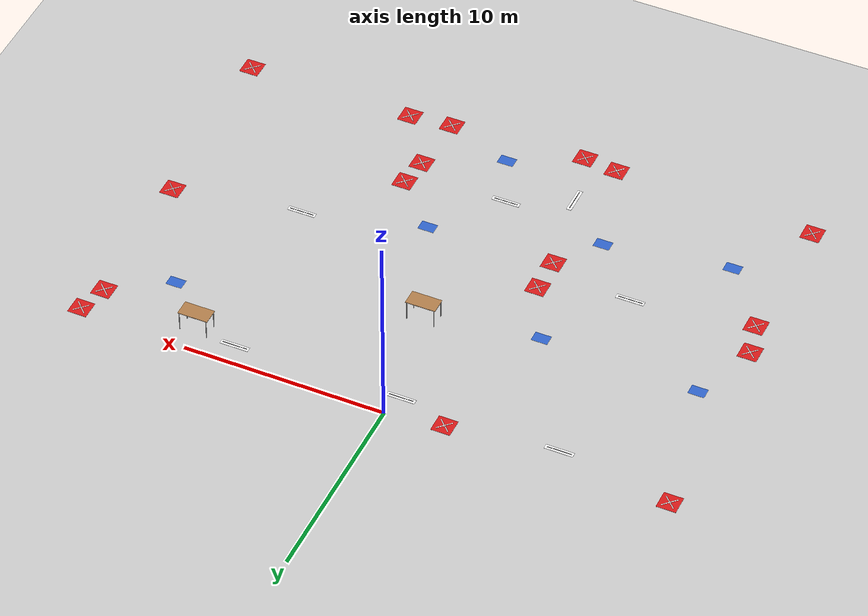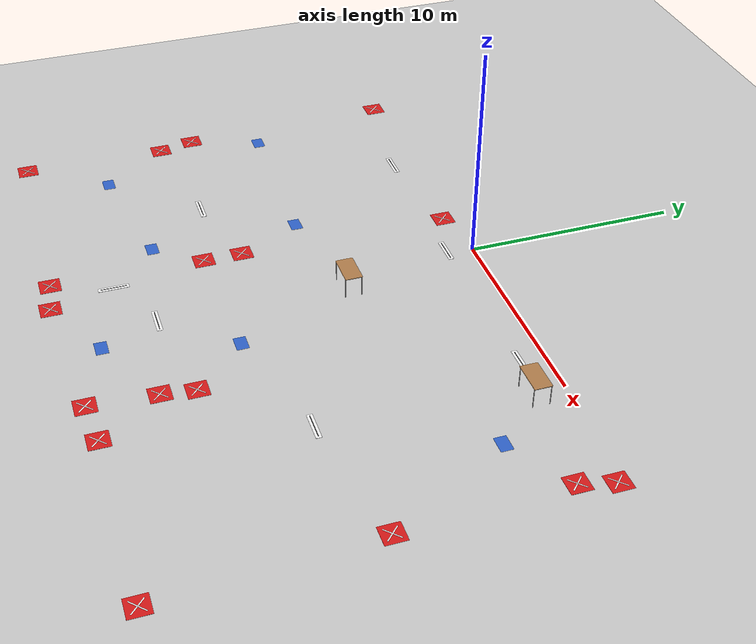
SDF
<sdf version="1.7">
 <world name="default">
  <model name="ground_plane">
   <static>1</static>
   <link name="link">
    <collision name="collision">
     <geometry><plane><normal>0 0 1</normal><size>100 100</size></plane></geometry>
     <surface>
      <contact><collide_bitmask>65535</collide_bitmask></contact>
      <friction><ode><mu>100</mu><mu2>50</mu2></ode></friction>
     </surface>
    </collision>
    <visual name="visual">
     <cast_shadows>0</cast_shadows>
     <geometry><plane><normal>0 0 1</normal><size>100 100</size></plane></geometry>
     <material>
      <script><uri>file://media/materials/scripts/gazebo.material</uri><name>Gazebo/Grey</name></script>
     </material>
    </visual>
   </link>
  </model>
  <model name="table_4">
   <static>1</static>
   <link name="link">
    <collision name="surface">
     <pose>0 0 1 0 -0 0</pose>
     <geometry><box><size>1.5 0.8 0.03</size></box></geometry>
     <surface><friction><ode><mu>0.6</mu><mu2>0.6</mu2></ode></friction></surface>
    </collision>
    <visual name="visual1">
     <pose>0 0 1 0 -0 0</pose>
     <geometry><box><size>1.5 0.8 0.03</size></box></geometry>
     <material>
      <script><uri>file://media/materials/scripts/gazebo.material</uri><name>Gazebo/Wood</name></script>
     </material>
    </visual>
    <collision name="front_left_leg">
     <pose>0.68 0.38 0.5 0 -0 0</pose>
     <geometry><cylinder><radius>0.02</radius><length>1</length></cylinder></geometry>
    </collision>
    <visual name="front_left_leg_visual">
     <pose>0.68 0.38 0.5 0 -0 0</pose>
     <geometry><cylinder><radius>0.02</radius><length>1</length></cylinder></geometry>
     <material>
      <script><uri>file://media/materials/scripts/gazebo.material</uri><name>Gazebo/Grey</name></script>
     </material>
    </visual>
    <collision name="front_right_leg">
     <pose>0.68 -0.38 0.5 0 -0 0</pose>
     <geometry><cylinder><radius>0.02</radius><length>1</length></cylinder></geometry>
    </collision>
    <visual name="front_right_leg_visual">
     <pose>0.68 -0.38 0.5 0 -0 0</pose>
     <geometry><cylinder><radius>0.02</radius><length>1</length></cylinder></geometry>
     <material>
      <script><uri>file://media/materials/scripts/gazebo.material</uri><name>Gazebo/Grey</name></script>
     </material>
    </visual>
    <collision name="back_right_leg">
     <pose>-0.68 -0.38 0.5 0 -0 0</pose>
     <geometry><cylinder><radius>0.02</radius><length>1</length></cylinder></geometry>
    </collision>
    <visual name="back_right_leg_visual">
     <pose>-0.68 -0.38 0.5 0 -0 0</pose>
     <geometry><cylinder><radius>0.02</radius><length>1</length></cylinder></geometry>
     <material>
      <script><uri>file://media/materials/scripts/gazebo.material</uri><name>Gazebo/Grey</name></script>
     </material>
    </visual>
    <collision name="back_left_leg">
     <pose>-0.68 0.38 0.5 0 -0 0</pose>
     <geometry><cylinder><radius>0.02</radius><length>1</length></cylinder></geometry>
    </collision>
    <visual name="back_left_leg_visual">
     <pose>-0.68 0.38 0.5 0 -0 0</pose>
     <geometry><cylinder><radius>0.02</radius><length>1</length></cylinder></geometry>
     <material>
      <script><uri>file://media/materials/scripts/gazebo.material</uri><name>Gazebo/Grey</name></script>
     </material>
    </visual>
   </link>
   <pose>10.082 -1.41051 0 0 -0 0</pose>
  </model>
  <model name="table_5">
   <static>1</static>
   <link name="link">
    <collision name="surface">
     <pose>0 0 1 0 -0 0</pose>
     <geometry><box><size>1.5 0.8 0.03</size></box></geometry>
     <surface><friction><ode><mu>0.6</mu><mu2>0.6</mu2></ode></friction></surface>
    </collision>
    <visual name="visual1">
     <pose>0 0 1 0 -0 0</pose>
     <geometry><box><size>1.5 0.8 0.03</size></box></geometry>
     <material>
      <script><uri>file://media/materials/scripts/gazebo.material</uri><name>Gazebo/Wood</name></script>
     </material>
    </visual>
    <collision name="front_left_leg">
     <pose>0.68 0.38 0.5 0 -0 0</pose>
     <geometry><cylinder><radius>0.02</radius><length>1</length></cylinder></geometry>
    </collision>
    <visual name="front_left_leg_visual">
     <pose>0.68 0.38 0.5 0 -0 0</pose>
     <geometry><cylinder><radius>0.02</radius><length>1</length></cylinder></geometry>
     <material>
      <script><uri>file://media/materials/scripts/gazebo.material</uri><name>Gazebo/Grey</name></script>
     </material>
    </visual>
    <collision name="front_right_leg">
     <pose>0.68 -0.38 0.5 0 -0 0</pose>
     <geometry><cylinder><radius>0.02</radius><length>1</length></cylinder></geometry>
    </collision>
    <visual name="front_right_leg_visual">
     <pose>0.68 -0.38 0.5 0 -0 0</pose>
     <geometry><cylinder><radius>0.02</radius><length>1</length></cylinder></geometry>
     <material>
      <script><uri>file://media/materials/scripts/gazebo.material</uri><name>Gazebo/Grey</name></script>
     </material>
    </visual>
    <collision name="back_right_leg">
     <pose>-0.68 -0.38 0.5 0 -0 0</pose>
     <geometry><cylinder><radius>0.02</radius><length>1</length></cylinder></geometry>
    </collision>
    <visual name="back_right_leg_visual">
     <pose>-0.68 -0.38 0.5 0 -0 0</pose>
     <geometry><cylinder><radius>0.02</radius><length>1</length></cylinder></geometry>
     <material>
      <script><uri>file://media/materials/scripts/gazebo.material</uri><name>Gazebo/Grey</name></script>
     </material>
    </visual>
    <collision name="back_left_leg">
     <pose>-0.68 0.38 0.5 0 -0 0</pose>
     <geometry><cylinder><radius>0.02</radius><length>1</length></cylinder></geometry>
    </collision>
    <visual name="back_left_leg_visual">
     <pose>-0.68 0.38 0.5 0 -0 0</pose>
     <geometry><cylinder><radius>0.02</radius><length>1</length></cylinder></geometry>
     <material>
      <script><uri>file://media/materials/scripts/gazebo.material</uri><name>Gazebo/Grey</name></script>
     </material>
    </visual>
   </link>
   <pose>0.95139 -6.33758 0 0 -0 0</pose>
  </model>
  <model name="semantic_marker_door_0">
   <static>true</static>
   <pose>-8.10 -1.10 0 0 0 0.0000</pose>
   <link name="link">
    <visual name="door_patch">
     <pose>0 0 0.005 0 0 0</pose>
     <geometry><box><size>1.40 0.26 0.01</size></box></geometry>
     <material><ambient>0.96 0.96 0.96 1</ambient><diffuse>0.96 0.96 0.96 1</diffuse></material>
    </visual>
    <visual name="door_center_line">
     <pose>0 0 0.011 0 0 0</pose>
     <geometry><box><size>1.22 0.03 0.005</size></box></geometry>
     <material><ambient>0.15 0.15 0.15 1</ambient><diffuse>0.15 0.15 0.15 1</diffuse></material>
    </visual>
   </link>
  </model>
  <model name="semantic_marker_door_2">
   <static>true</static>
   <pose>-0.30 -1.20 0 0 0 0.0000</pose>
   <link name="link">
    <visual name="door_patch">
     <pose>0 0 0.005 0 0 0</pose>
     <geometry><box><size>1.40 0.26 0.01</size></box></geometry>
     <material><ambient>0.96 0.96 0.96 1</ambient><diffuse>0.96 0.96 0.96 1</diffuse></material>
    </visual>
    <visual name="door_center_line">
     <pose>0 0 0.011 0 0 0</pose>
     <geometry><box><size>1.22 0.03 0.005</size></box></geometry>
     <material><ambient>0.15 0.15 0.15 1</ambient><diffuse>0.15 0.15 0.15 1</diffuse></material>
    </visual>
   </link>
  </model>
  <model name="semantic_marker_door_4">
   <static>true</static>
   <pose>8.00 -1.10 0 0 0 0.0000</pose>
   <link name="link">
    <visual name="door_patch">
     <pose>0 0 0.005 0 0 0</pose>
     <geometry><box><size>1.40 0.26 0.01</size></box></geometry>
     <material><ambient>0.96 0.96 0.96 1</ambient><diffuse>0.96 0.96 0.96 1</diffuse></material>
    </visual>
    <visual name="door_center_line">
     <pose>0 0 0.011 0 0 0</pose>
     <geometry><box><size>1.22 0.03 0.005</size></box></geometry>
     <material><ambient>0.15 0.15 0.15 1</ambient><diffuse>0.15 0.15 0.15 1</diffuse></material>
    </visual>
   </link>
  </model>
  <model name="semantic_marker_door_5">
   <static>true</static>
   <pose>-7.20 -11.30 0 0 0 0.0000</pose>
   <link name="link">
    <visual name="door_patch">
     <pose>0 0 0.005 0 0 0</pose>
     <geometry><box><size>1.40 0.26 0.01</size></box></geometry>
     <material><ambient>0.96 0.96 0.96 1</ambient><diffuse>0.96 0.96 0.96 1</diffuse></material>
    </visual>
    <visual name="door_center_line">
     <pose>0 0 0.011 0 0 0</pose>
     <geometry><box><size>1.22 0.03 0.005</size></box></geometry>
     <material><ambient>0.15 0.15 0.15 1</ambient><diffuse>0.15 0.15 0.15 1</diffuse></material>
    </visual>
   </link>
  </model>
  <model name="semantic_marker_door_6">
   <static>true</static>
   <pose>-2.20 -16.40 0 0 0 1.5708</pose>
   <link name="link">
    <visual name="door_patch">
     <pose>0 0 0.005 0 0 0</pose>
     <geometry><box><size>1.40 0.26 0.01</size></box></geometry>
     <material><ambient>0.96 0.96 0.96 1</ambient><diffuse>0.96 0.96 0.96 1</diffuse></material>
    </visual>
    <visual name="door_center_line">
     <pose>0 0 0.011 0 0 0</pose>
     <geometry><box><size>1.22 0.03 0.005</size></box></geometry>
     <material><ambient>0.15 0.15 0.15 1</ambient><diffuse>0.15 0.15 0.15 1</diffuse></material>
    </visual>
   </link>
  </model>
  <model name="semantic_marker_door_7">
   <static>true</static>
   <pose>9.10 -10.40 0 0 0 0.0000</pose>
   <link name="link">
    <visual name="door_patch">
     <pose>0 0 0.005 0 0 0</pose>
     <geometry><box><size>1.40 0.26 0.01</size></box></geometry>
     <material><ambient>0.96 0.96 0.96 1</ambient><diffuse>0.96 0.96 0.96 1</diffuse></material>
    </visual>
    <visual name="door_center_line">
     <pose>0 0 0.011 0 0 0</pose>
     <geometry><box><size>1.22 0.03 0.005</size></box></geometry>
     <material><ambient>0.15 0.15 0.15 1</ambient><diffuse>0.15 0.15 0.15 1</diffuse></material>
    </visual>
   </link>
  </model>
  <model name="semantic_marker_door_8">
   <static>true</static>
   <pose>0.70 -15.00 0 0 0 0.0000</pose>
   <link name="link">
    <visual name="door_patch">
     <pose>0 0 0.005 0 0 0</pose>
     <geometry><box><size>1.40 0.26 0.01</size></box></geometry>
     <material><ambient>0.96 0.96 0.96 1</ambient><diffuse>0.96 0.96 0.96 1</diffuse></material>
    </visual>
    <visual name="door_center_line">
     <pose>0 0 0.011 0 0 0</pose>
     <geometry><box><size>1.22 0.03 0.005</size></box></geometry>
     <material><ambient>0.15 0.15 0.15 1</ambient><diffuse>0.15 0.15 0.15 1</diffuse></material>
    </visual>
   </link>
  </model>
  <model name="semantic_marker_dead_end_2">
   <static>true</static>
   <pose>15.50 -0.40 0 0 0 0.0000</pose>
   <link name="link">
    <visual name="dead_end_patch">
     <pose>0 0 0.005 0 0 0</pose>
     <geometry><box><size>0.95 0.95 0.01</size></box></geometry>
     <material><ambient>0.85 0.10 0.10 1</ambient><diffuse>0.85 0.10 0.10 1</diffuse></material>
    </visual>
    <visual name="cross_bar_a">
     <pose>0 0 0.011 0 0 0.78</pose>
     <geometry><box><size>0.83 0.05 0.005</size></box></geometry>
     <material><ambient>0.98 0.98 0.98 1</ambient><diffuse>0.98 0.98 0.98 1</diffuse></material>
    </visual>
    <visual name="cross_bar_b">
     <pose>0 0 0.011 0 0 -0.78</pose>
     <geometry><box><size>0.83 0.05 0.005</size></box></geometry>
     <material><ambient>0.98 0.98 0.98 1</ambient><diffuse>0.98 0.98 0.98 1</diffuse></material>
    </visual>
   </link>
  </model>
  <model name="semantic_marker_dead_end_3">
   <static>true</static>
   <pose>15.10 -1.90 0 0 0 0.0000</pose>
   <link name="link">
    <visual name="dead_end_patch">
     <pose>0 0 0.005 0 0 0</pose>
     <geometry><box><size>0.95 0.95 0.01</size></box></geometry>
     <material><ambient>0.85 0.10 0.10 1</ambient><diffuse>0.85 0.10 0.10 1</diffuse></material>
    </visual>
    <visual name="cross_bar_a">
     <pose>0 0 0.011 0 0 0.78</pose>
     <geometry><box><size>0.83 0.05 0.005</size></box></geometry>
     <material><ambient>0.98 0.98 0.98 1</ambient><diffuse>0.98 0.98 0.98 1</diffuse></material>
    </visual>
    <visual name="cross_bar_b">
     <pose>0 0 0.011 0 0 -0.78</pose>
     <geometry><box><size>0.83 0.05 0.005</size></box></geometry>
     <material><ambient>0.98 0.98 0.98 1</ambient><diffuse>0.98 0.98 0.98 1</diffuse></material>
    </visual>
   </link>
  </model>
  <model name="semantic_marker_dead_end_4">
   <static>true</static>
   <pose>15.30 -9.30 0 0 0 0.0000</pose>
   <link name="link">
    <visual name="dead_end_patch">
     <pose>0 0 0.005 0 0 0</pose>
     <geometry><box><size>0.95 0.95 0.01</size></box></geometry>
     <material><ambient>0.85 0.10 0.10 1</ambient><diffuse>0.85 0.10 0.10 1</diffuse></material>
    </visual>
    <visual name="cross_bar_a">
     <pose>0 0 0.011 0 0 0.78</pose>
     <geometry><box><size>0.83 0.05 0.005</size></box></geometry>
     <material><ambient>0.98 0.98 0.98 1</ambient><diffuse>0.98 0.98 0.98 1</diffuse></material>
    </visual>
    <visual name="cross_bar_b">
     <pose>0 0 0.011 0 0 -0.78</pose>
     <geometry><box><size>0.83 0.05 0.005</size></box></geometry>
     <material><ambient>0.98 0.98 0.98 1</ambient><diffuse>0.98 0.98 0.98 1</diffuse></material>
    </visual>
   </link>
  </model>
  <model name="semantic_marker_dead_end_5">
   <static>true</static>
   <pose>15.70 -18.60 0 0 0 0.0000</pose>
   <link name="link">
    <visual name="dead_end_patch">
     <pose>0 0 0.005 0 0 0</pose>
     <geometry><box><size>0.95 0.95 0.01</size></box></geometry>
     <material><ambient>0.85 0.10 0.10 1</ambient><diffuse>0.85 0.10 0.10 1</diffuse></material>
    </visual>
    <visual name="cross_bar_a">
     <pose>0 0 0.011 0 0 0.78</pose>
     <geometry><box><size>0.83 0.05 0.005</size></box></geometry>
     <material><ambient>0.98 0.98 0.98 1</ambient><diffuse>0.98 0.98 0.98 1</diffuse></material>
    </visual>
    <visual name="cross_bar_b">
     <pose>0 0 0.011 0 0 -0.78</pose>
     <geometry><box><size>0.83 0.05 0.005</size></box></geometry>
     <material><ambient>0.98 0.98 0.98 1</ambient><diffuse>0.98 0.98 0.98 1</diffuse></material>
    </visual>
   </link>
  </model>
  <model name="semantic_marker_dead_end_6">
   <static>true</static>
   <pose>7.30 -18.60 0 0 0 0.0000</pose>
   <link name="link">
    <visual name="dead_end_patch">
     <pose>0 0 0.005 0 0 0</pose>
     <geometry><box><size>0.95 0.95 0.01</size></box></geometry>
     <material><ambient>0.85 0.10 0.10 1</ambient><diffuse>0.85 0.10 0.10 1</diffuse></material>
    </visual>
    <visual name="cross_bar_a">
     <pose>0 0 0.011 0 0 0.78</pose>
     <geometry><box><size>0.83 0.05 0.005</size></box></geometry>
     <material><ambient>0.98 0.98 0.98 1</ambient><diffuse>0.98 0.98 0.98 1</diffuse></material>
    </visual>
    <visual name="cross_bar_b">
     <pose>0 0 0.011 0 0 -0.78</pose>
     <geometry><box><size>0.83 0.05 0.005</size></box></geometry>
     <material><ambient>0.98 0.98 0.98 1</ambient><diffuse>0.98 0.98 0.98 1</diffuse></material>
    </visual>
   </link>
  </model>
  <model name="semantic_marker_dead_end_7">
   <static>true</static>
   <pose>5.40 -15.80 0 0 0 0.0000</pose>
   <link name="link">
    <visual name="dead_end_patch">
     <pose>0 0 0.005 0 0 0</pose>
     <geometry><box><size>0.95 0.95 0.01</size></box></geometry>
     <material><ambient>0.85 0.10 0.10 1</ambient><diffuse>0.85 0.10 0.10 1</diffuse></material>
    </visual>
    <visual name="cross_bar_a">
     <pose>0 0 0.011 0 0 0.78</pose>
     <geometry><box><size>0.83 0.05 0.005</size></box></geometry>
     <material><ambient>0.98 0.98 0.98 1</ambient><diffuse>0.98 0.98 0.98 1</diffuse></material>
    </visual>
    <visual name="cross_bar_b">
     <pose>0 0 0.011 0 0 -0.78</pose>
     <geometry><box><size>0.83 0.05 0.005</size></box></geometry>
     <material><ambient>0.98 0.98 0.98 1</ambient><diffuse>0.98 0.98 0.98 1</diffuse></material>
    </visual>
   </link>
  </model>
  <model name="semantic_marker_dead_end_8">
   <static>true</static>
   <pose>5.60 -14.30 0 0 0 0.0000</pose>
   <link name="link">
    <visual name="dead_end_patch">
     <pose>0 0 0.005 0 0 0</pose>
     <geometry><box><size>0.95 0.95 0.01</size></box></geometry>
     <material><ambient>0.85 0.10 0.10 1</ambient><diffuse>0.85 0.10 0.10 1</diffuse></material>
    </visual>
    <visual name="cross_bar_a">
     <pose>0 0 0.011 0 0 0.78</pose>
     <geometry><box><size>0.83 0.05 0.005</size></box></geometry>
     <material><ambient>0.98 0.98 0.98 1</ambient><diffuse>0.98 0.98 0.98 1</diffuse></material>
    </visual>
    <visual name="cross_bar_b">
     <pose>0 0 0.011 0 0 -0.78</pose>
     <geometry><box><size>0.83 0.05 0.005</size></box></geometry>
     <material><ambient>0.98 0.98 0.98 1</ambient><diffuse>0.98 0.98 0.98 1</diffuse></material>
    </visual>
   </link>
  </model>
  <model name="semantic_marker_dead_end_9">
   <static>true</static>
   <pose>5.20 -18.80 0 0 0 0.0000</pose>
   <link name="link">
    <visual name="dead_end_patch">
     <pose>0 0 0.005 0 0 0</pose>
     <geometry><box><size>0.95 0.95 0.01</size></box></geometry>
     <material><ambient>0.85 0.10 0.10 1</ambient><diffuse>0.85 0.10 0.10 1</diffuse></material>
    </visual>
    <visual name="cross_bar_a">
     <pose>0 0 0.011 0 0 0.78</pose>
     <geometry><box><size>0.83 0.05 0.005</size></box></geometry>
     <material><ambient>0.98 0.98 0.98 1</ambient><diffuse>0.98 0.98 0.98 1</diffuse></material>
    </visual>
    <visual name="cross_bar_b">
     <pose>0 0 0.011 0 0 -0.78</pose>
     <geometry><box><size>0.83 0.05 0.005</size></box></geometry>
     <material><ambient>0.98 0.98 0.98 1</ambient><diffuse>0.98 0.98 0.98 1</diffuse></material>
    </visual>
   </link>
  </model>
  <model name="semantic_marker_dead_end_10">
   <static>true</static>
   <pose>-1.50 -19.30 0 0 0 0.0000</pose>
   <link name="link">
    <visual name="dead_end_patch">
     <pose>0 0 0.005 0 0 0</pose>
     <geometry><box><size>0.95 0.95 0.01</size></box></geometry>
     <material><ambient>0.85 0.10 0.10 1</ambient><diffuse>0.85 0.10 0.10 1</diffuse></material>
    </visual>
    <visual name="cross_bar_a">
     <pose>0 0 0.011 0 0 0.78</pose>
     <geometry><box><size>0.83 0.05 0.005</size></box></geometry>
     <material><ambient>0.98 0.98 0.98 1</ambient><diffuse>0.98 0.98 0.98 1</diffuse></material>
    </visual>
    <visual name="cross_bar_b">
     <pose>0 0 0.011 0 0 -0.78</pose>
     <geometry><box><size>0.83 0.05 0.005</size></box></geometry>
     <material><ambient>0.98 0.98 0.98 1</ambient><diffuse>0.98 0.98 0.98 1</diffuse></material>
    </visual>
   </link>
  </model>
  <model name="semantic_marker_dead_end_11">
   <static>true</static>
   <pose>-13.20 -18.90 0 0 0 0.0000</pose>
   <link name="link">
    <visual name="dead_end_patch">
     <pose>0 0 0.005 0 0 0</pose>
     <geometry><box><size>0.95 0.95 0.01</size></box></geometry>
     <material><ambient>0.85 0.10 0.10 1</ambient><diffuse>0.85 0.10 0.10 1</diffuse></material>
    </visual>
    <visual name="cross_bar_a">
     <pose>0 0 0.011 0 0 0.78</pose>
     <geometry><box><size>0.83 0.05 0.005</size></box></geometry>
     <material><ambient>0.98 0.98 0.98 1</ambient><diffuse>0.98 0.98 0.98 1</diffuse></material>
    </visual>
    <visual name="cross_bar_b">
     <pose>0 0 0.011 0 0 -0.78</pose>
     <geometry><box><size>0.83 0.05 0.005</size></box></geometry>
     <material><ambient>0.98 0.98 0.98 1</ambient><diffuse>0.98 0.98 0.98 1</diffuse></material>
    </visual>
   </link>
  </model>
  <model name="semantic_marker_dead_end_12">
   <static>true</static>
   <pose>-3.20 -19.10 0 0 0 0.0000</pose>
   <link name="link">
    <visual name="dead_end_patch">
     <pose>0 0 0.005 0 0 0</pose>
     <geometry><box><size>0.95 0.95 0.01</size></box></geometry>
     <material><ambient>0.85 0.10 0.10 1</ambient><diffuse>0.85 0.10 0.10 1</diffuse></material>
    </visual>
    <visual name="cross_bar_a">
     <pose>0 0 0.011 0 0 0.78</pose>
     <geometry><box><size>0.83 0.05 0.005</size></box></geometry>
     <material><ambient>0.98 0.98 0.98 1</ambient><diffuse>0.98 0.98 0.98 1</diffuse></material>
    </visual>
    <visual name="cross_bar_b">
     <pose>0 0 0.011 0 0 -0.78</pose>
     <geometry><box><size>0.83 0.05 0.005</size></box></geometry>
     <material><ambient>0.98 0.98 0.98 1</ambient><diffuse>0.98 0.98 0.98 1</diffuse></material>
    </visual>
   </link>
  </model>
  <model name="semantic_marker_dead_end_13">
   <static>true</static>
   <pose>-3.00 -12.10 0 0 0 0.0000</pose>
   <link name="link">
    <visual name="dead_end_patch">
     <pose>0 0 0.005 0 0 0</pose>
     <geometry><box><size>0.95 0.95 0.01</size></box></geometry>
     <material><ambient>0.85 0.10 0.10 1</ambient><diffuse>0.85 0.10 0.10 1</diffuse></material>
    </visual>
    <visual name="cross_bar_a">
     <pose>0 0 0.011 0 0 0.78</pose>
     <geometry><box><size>0.83 0.05 0.005</size></box></geometry>
     <material><ambient>0.98 0.98 0.98 1</ambient><diffuse>0.98 0.98 0.98 1</diffuse></material>
    </visual>
    <visual name="cross_bar_b">
     <pose>0 0 0.011 0 0 -0.78</pose>
     <geometry><box><size>0.83 0.05 0.005</size></box></geometry>
     <material><ambient>0.98 0.98 0.98 1</ambient><diffuse>0.98 0.98 0.98 1</diffuse></material>
    </visual>
   </link>
  </model>
  <model name="semantic_marker_dead_end_14">
   <static>true</static>
   <pose>-13.10 -12.10 0 0 0 0.0000</pose>
   <link name="link">
    <visual name="dead_end_patch">
     <pose>0 0 0.005 0 0 0</pose>
     <geometry><box><size>0.95 0.95 0.01</size></box></geometry>
     <material><ambient>0.85 0.10 0.10 1</ambient><diffuse>0.85 0.10 0.10 1</diffuse></material>
    </visual>
    <visual name="cross_bar_a">
     <pose>0 0 0.011 0 0 0.78</pose>
     <geometry><box><size>0.83 0.05 0.005</size></box></geometry>
     <material><ambient>0.98 0.98 0.98 1</ambient><diffuse>0.98 0.98 0.98 1</diffuse></material>
    </visual>
    <visual name="cross_bar_b">
     <pose>0 0 0.011 0 0 -0.78</pose>
     <geometry><box><size>0.83 0.05 0.005</size></box></geometry>
     <material><ambient>0.98 0.98 0.98 1</ambient><diffuse>0.98 0.98 0.98 1</diffuse></material>
    </visual>
   </link>
  </model>
  <model name="semantic_marker_dead_end_15">
   <static>true</static>
   <pose>-13.50 -10.40 0 0 0 0.0000</pose>
   <link name="link">
    <visual name="dead_end_patch">
     <pose>0 0 0.005 0 0 0</pose>
     <geometry><box><size>0.95 0.95 0.01</size></box></geometry>
     <material><ambient>0.85 0.10 0.10 1</ambient><diffuse>0.85 0.10 0.10 1</diffuse></material>
    </visual>
    <visual name="cross_bar_a">
     <pose>0 0 0.011 0 0 0.78</pose>
     <geometry><box><size>0.83 0.05 0.005</size></box></geometry>
     <material><ambient>0.98 0.98 0.98 1</ambient><diffuse>0.98 0.98 0.98 1</diffuse></material>
    </visual>
    <visual name="cross_bar_b">
     <pose>0 0 0.011 0 0 -0.78</pose>
     <geometry><box><size>0.83 0.05 0.005</size></box></geometry>
     <material><ambient>0.98 0.98 0.98 1</ambient><diffuse>0.98 0.98 0.98 1</diffuse></material>
    </visual>
   </link>
  </model>
  <model name="semantic_marker_dead_end_16">
   <static>true</static>
   <pose>-3.00 -10.30 0 0 0 0.0000</pose>
   <link name="link">
    <visual name="dead_end_patch">
     <pose>0 0 0.005 0 0 0</pose>
     <geometry><box><size>0.95 0.95 0.01</size></box></geometry>
     <material><ambient>0.85 0.10 0.10 1</ambient><diffuse>0.85 0.10 0.10 1</diffuse></material>
    </visual>
    <visual name="cross_bar_a">
     <pose>0 0 0.011 0 0 0.78</pose>
     <geometry><box><size>0.83 0.05 0.005</size></box></geometry>
     <material><ambient>0.98 0.98 0.98 1</ambient><diffuse>0.98 0.98 0.98 1</diffuse></material>
    </visual>
    <visual name="cross_bar_b">
     <pose>0 0 0.011 0 0 -0.78</pose>
     <geometry><box><size>0.83 0.05 0.005</size></box></geometry>
     <material><ambient>0.98 0.98 0.98 1</ambient><diffuse>0.98 0.98 0.98 1</diffuse></material>
    </visual>
   </link>
  </model>
  <model name="semantic_marker_dead_end_17">
   <static>true</static>
   <pose>-2.80 -0.40 0 0 0 0.0000</pose>
   <link name="link">
    <visual name="dead_end_patch">
     <pose>0 0 0.005 0 0 0</pose>
     <geometry><box><size>0.95 0.95 0.01</size></box></geometry>
     <material><ambient>0.85 0.10 0.10 1</ambient><diffuse>0.85 0.10 0.10 1</diffuse></material>
    </visual>
    <visual name="cross_bar_a">
     <pose>0 0 0.011 0 0 0.78</pose>
     <geometry><box><size>0.83 0.05 0.005</size></box></geometry>
     <material><ambient>0.98 0.98 0.98 1</ambient><diffuse>0.98 0.98 0.98 1</diffuse></material>
    </visual>
    <visual name="cross_bar_b">
     <pose>0 0 0.011 0 0 -0.78</pose>
     <geometry><box><size>0.83 0.05 0.005</size></box></geometry>
     <material><ambient>0.98 0.98 0.98 1</ambient><diffuse>0.98 0.98 0.98 1</diffuse></material>
    </visual>
   </link>
  </model>
  <model name="semantic_marker_dead_end_18">
   <static>true</static>
   <pose>-13.80 -0.20 0 0 0 0.0000</pose>
   <link name="link">
    <visual name="dead_end_patch">
     <pose>0 0 0.005 0 0 0</pose>
     <geometry><box><size>0.95 0.95 0.01</size></box></geometry>
     <material><ambient>0.85 0.10 0.10 1</ambient><diffuse>0.85 0.10 0.10 1</diffuse></material>
    </visual>
    <visual name="cross_bar_a">
     <pose>0 0 0.011 0 0 0.78</pose>
     <geometry><box><size>0.83 0.05 0.005</size></box></geometry>
     <material><ambient>0.98 0.98 0.98 1</ambient><diffuse>0.98 0.98 0.98 1</diffuse></material>
    </visual>
    <visual name="cross_bar_b">
     <pose>0 0 0.011 0 0 -0.78</pose>
     <geometry><box><size>0.83 0.05 0.005</size></box></geometry>
     <material><ambient>0.98 0.98 0.98 1</ambient><diffuse>0.98 0.98 0.98 1</diffuse></material>
    </visual>
   </link>
  </model>
  <model name="semantic_marker_water_0">
   <static>true</static>
   <pose>-12.30 -7.10 0 0 0 0.0000</pose>
   <link name="link">
    <visual name="water_patch">
     <pose>0 0 0.005 0 0 0</pose>
     <geometry><box><size>0.80 0.55 0.01</size></box></geometry>
     <material>
      <ambient>0.10 0.35 0.85 0.82</ambient>
      <diffuse>0.10 0.35 0.85 0.82</diffuse>
      <specular>0.95 0.95 0.95 1</specular>
     </material>
    </visual>
   </link>
  </model>
  <model name="semantic_marker_water_1">
   <static>true</static>
   <pose>-4.50 -7.30 0 0 0 0.0000</pose>
   <link name="link">
    <visual name="water_patch">
     <pose>0 0 0.005 0 0 0</pose>
     <geometry><box><size>0.80 0.55 0.01</size></box></geometry>
     <material>
      <ambient>0.10 0.35 0.85 0.82</ambient>
      <diffuse>0.10 0.35 0.85 0.82</diffuse>
      <specular>0.95 0.95 0.95 1</specular>
     </material>
    </visual>
   </link>
  </model>
  <model name="semantic_marker_water_2">
   <static>true</static>
   <pose>-10.70 -15.20 0 0 0 0.0000</pose>
   <link name="link">
    <visual name="water_patch">
     <pose>0 0 0.005 0 0 0</pose>
     <geometry><box><size>0.80 0.55 0.01</size></box></geometry>
     <material>
      <ambient>0.10 0.35 0.85 0.82</ambient>
      <diffuse>0.10 0.35 0.85 0.82</diffuse>
      <specular>0.95 0.95 0.95 1</specular>
     </material>
    </visual>
   </link>
  </model>
  <model name="semantic_marker_water_3">
   <static>true</static>
   <pose>-4.60 -14.20 0 0 0 0.0000</pose>
   <link name="link">
    <visual name="water_patch">
     <pose>0 0 0.005 0 0 0</pose>
     <geometry><box><size>0.80 0.55 0.01</size></box></geometry>
     <material>
      <ambient>0.10 0.35 0.85 0.82</ambient>
      <diffuse>0.10 0.35 0.85 0.82</diffuse>
      <specular>0.95 0.95 0.95 1</specular>
     </material>
    </visual>
   </link>
  </model>
  <model name="semantic_marker_water_4">
   <static>true</static>
   <pose>1.80 -17.60 0 0 0 0.0000</pose>
   <link name="link">
    <visual name="water_patch">
     <pose>0 0 0.005 0 0 0</pose>
     <geometry><box><size>0.80 0.55 0.01</size></box></geometry>
     <material>
      <ambient>0.10 0.35 0.85 0.82</ambient>
      <diffuse>0.10 0.35 0.85 0.82</diffuse>
      <specular>0.95 0.95 0.95 1</specular>
     </material>
    </visual>
   </link>
  </model>
  <model name="semantic_marker_water_5">
   <static>true</static>
   <pose>3.30 -11.90 0 0 0 0.0000</pose>
   <link name="link">
    <visual name="water_patch">
     <pose>0 0 0.005 0 0 0</pose>
     <geometry><box><size>0.80 0.55 0.01</size></box></geometry>
     <material>
      <ambient>0.10 0.35 0.85 0.82</ambient>
      <diffuse>0.10 0.35 0.85 0.82</diffuse>
      <specular>0.95 0.95 0.95 1</specular>
     </material>
    </visual>
   </link>
  </model>
  <model name="semantic_marker_water_6">
   <static>true</static>
   <pose>12.30 -3.70 0 0 0 0.0000</pose>
   <link name="link">
    <visual name="water_patch">
     <pose>0 0 0.005 0 0 0</pose>
     <geometry><box><size>0.80 0.55 0.01</size></box></geometry>
     <material>
      <ambient>0.10 0.35 0.85 0.82</ambient>
      <diffuse>0.10 0.35 0.85 0.82</diffuse>
      <specular>0.95 0.95 0.95 1</specular>
     </material>
    </visual>
   </link>
  </model>
 </world>
</sdf>
